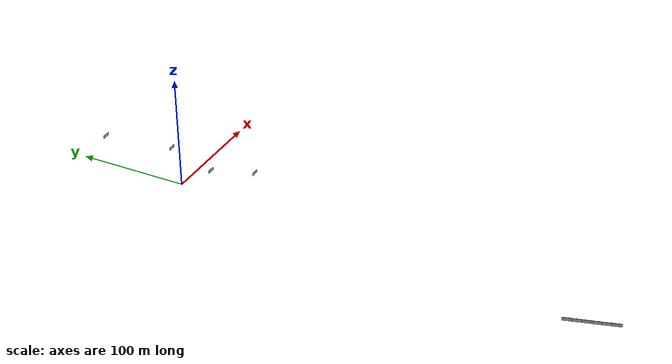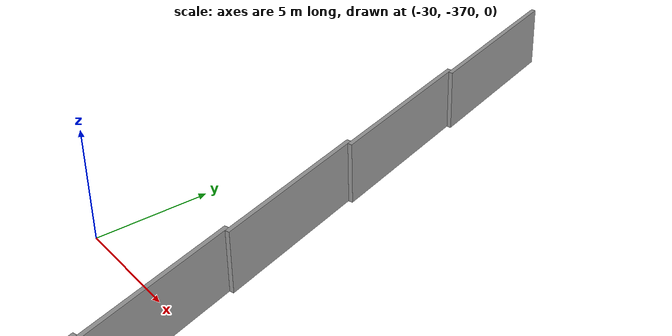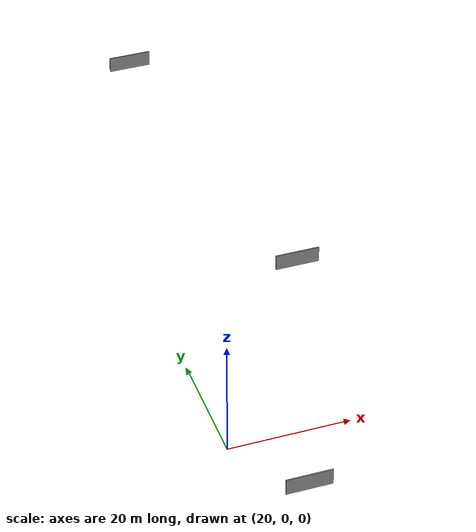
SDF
<sdf version="1.6">
 <world name="default">
  <light name="sun" type="directional">
   <pose>0 0 10 0 -0 0</pose>
   <diffuse>0.8 0.8 0.8 1</diffuse>
   <specular>0.2 0.2 0.2 1</specular>
   <attenuation>
    <range>1000</range>
    <constant>0.9</constant>
    <linear>0.01</linear>
    <quadratic>0.001</quadratic>
   </attenuation>
   <direction>-0.5 0.1 -0.9</direction>
  </light>
  <gravity>0 0 -9.8</gravity>
  <magnetic_field>6e-06 2.3e-05 -4.2e-05</magnetic_field>
  <atmosphere type="adiabatic"/>
  <physics name="default_physics" default="0" type="ode">
   <max_step_size>0.001</max_step_size>
   <real_time_factor>1</real_time_factor>
   <real_time_update_rate>1000</real_time_update_rate>
  </physics>
  <scene><ambient>0.4 0.4 0.4 1</ambient><background>0.7 0.7 0.7 1</background><shadows>1</shadows></scene>
  <audio><device>default</device></audio>
  <spherical_coordinates>
   <surface_model>EARTH_WGS84</surface_model>
   <latitude_deg>0</latitude_deg>
   <longitude_deg>0</longitude_deg>
   <elevation>0</elevation>
   <heading_deg>0</heading_deg>
  </spherical_coordinates>
  <model name="grey_wall">
   <static>1</static>
   <link name="link">
    <pose>0 0 1.4 0 -0 0</pose>
    <collision name="collision"><geometry><box><size>7.5 0.2 2.8</size></box></geometry></collision>
    <visual name="visual">
     <cast_shadows>0</cast_shadows>
     <geometry><box><size>7.5 0.2 2.8</size></box></geometry>
     <material>
      <script>
       <uri>model://grey_wall/materials/scripts</uri>
       <uri>model://grey_wall/materials/textures</uri>
       <name>vrc/grey_wall</name>
      </script>
     </material>
    </visual>
   </link>
   <pose>-29 -350 0 0 -0 1.87601</pose>
  </model>
  <model name="grey_wall_clone">
   <static>1</static>
   <link name="link">
    <pose>0 0 1.4 0 -0 0</pose>
    <collision name="collision"><geometry><box><size>7.5 0.2 2.8</size></box></geometry></collision>
    <visual name="visual">
     <cast_shadows>0</cast_shadows>
     <geometry><box><size>7.5 0.2 2.8</size></box></geometry>
     <material>
      <script>
       <uri>model://grey_wall/materials/scripts</uri>
       <uri>model://grey_wall/materials/textures</uri>
       <name>vrc/grey_wall</name>
      </script>
     </material>
    </visual>
   </link>
   <pose>-27 -357 0 0 -0 1.87601</pose>
  </model>
  <model name="grey_wall_clone_0">
   <static>1</static>
   <link name="link">
    <pose>0 0 1.4 0 -0 0</pose>
    <collision name="collision"><geometry><box><size>7.5 0.2 2.8</size></box></geometry></collision>
    <visual name="visual">
     <cast_shadows>0</cast_shadows>
     <geometry><box><size>7.5 0.2 2.8</size></box></geometry>
     <material>
      <script>
       <uri>model://grey_wall/materials/scripts</uri>
       <uri>model://grey_wall/materials/textures</uri>
       <name>vrc/grey_wall</name>
      </script>
     </material>
    </visual>
   </link>
   <pose>-25 -364 0 0 -0 1.87601</pose>
  </model>
  <model name="grey_wall_clone_0_clone">
   <static>1</static>
   <link name="link">
    <pose>0 0 1.4 0 -0 0</pose>
    <collision name="collision"><geometry><box><size>7.5 0.2 2.8</size></box></geometry></collision>
    <visual name="visual">
     <cast_shadows>0</cast_shadows>
     <geometry><box><size>7.5 0.2 2.8</size></box></geometry>
     <material>
      <script>
       <uri>model://grey_wall/materials/scripts</uri>
       <uri>model://grey_wall/materials/textures</uri>
       <name>vrc/grey_wall</name>
      </script>
     </material>
    </visual>
   </link>
   <pose>-23 -371 0 0 -0 1.87601</pose>
  </model>
  <model name="grey_wall_clone_0_clone_clone">
   <static>1</static>
   <link name="link">
    <pose>0 0 1.4 0 -0 0</pose>
    <collision name="collision"><geometry><box><size>7.5 0.2 2.8</size></box></geometry></collision>
    <visual name="visual">
     <cast_shadows>0</cast_shadows>
     <geometry><box><size>7.5 0.2 2.8</size></box></geometry>
     <material>
      <script>
       <uri>model://grey_wall/materials/scripts</uri>
       <uri>model://grey_wall/materials/textures</uri>
       <name>vrc/grey_wall</name>
      </script>
     </material>
    </visual>
   </link>
   <pose>-21 -378 0 0 -0 1.87601</pose>
  </model>
  <model name="grey_wall_clone_0_clone_clone_clone">
   <static>1</static>
   <link name="link">
    <pose>0 0 1.4 0 -0 0</pose>
    <collision name="collision"><geometry><box><size>7.5 0.2 2.8</size></box></geometry></collision>
    <visual name="visual">
     <cast_shadows>0</cast_shadows>
     <geometry><box><size>7.5 0.2 2.8</size></box></geometry>
     <material>
      <script>
       <uri>model://grey_wall/materials/scripts</uri>
       <uri>model://grey_wall/materials/textures</uri>
       <name>vrc/grey_wall</name>
      </script>
     </material>
    </visual>
   </link>
   <pose>-19 -385 0 0 -0 1.87601</pose>
  </model>
  <model name="grey_wall_0">
   <static>1</static>
   <link name="link">
    <pose>0 0 1.4 0 -0 0</pose>
    <collision name="collision"><geometry><box><size>7.5 0.2 2.8</size></box></geometry></collision>
    <visual name="visual">
     <cast_shadows>0</cast_shadows>
     <geometry><box><size>7.5 0.2 2.8</size></box></geometry>
     <material>
      <script>
       <uri>model://grey_wall/materials/scripts</uri>
       <uri>model://grey_wall/materials/textures</uri>
       <name>vrc/grey_wall</name>
      </script>
     </material>
    </visual>
   </link>
   <pose>42.0761 -48.2179 0 0 -0 0</pose>
  </model>
  <model name="grey_wall_1">
   <static>1</static>
   <link name="link">
    <pose>0 0 1.4 0 -0 0</pose>
    <collision name="collision"><geometry><box><size>7.5 0.2 2.8</size></box></geometry></collision>
    <visual name="visual">
     <cast_shadows>0</cast_shadows>
     <geometry><box><size>7.5 0.2 2.8</size></box></geometry>
     <material>
      <script>
       <uri>model://grey_wall/materials/scripts</uri>
       <uri>model://grey_wall/materials/textures</uri>
       <name>vrc/grey_wall</name>
      </script>
     </material>
    </visual>
   </link>
   <pose>36.5044 103.732 0 0 -0 0</pose>
  </model>
  <model name="grey_wall_3">
   <static>1</static>
   <link name="link">
    <pose>0 0 1.4 0 -0 0</pose>
    <collision name="collision"><geometry><box><size>7.5 0.2 2.8</size></box></geometry></collision>
    <visual name="visual">
     <cast_shadows>0</cast_shadows>
     <geometry><box><size>7.5 0.2 2.8</size></box></geometry>
     <material>
      <script>
       <uri>model://grey_wall/materials/scripts</uri>
       <uri>model://grey_wall/materials/textures</uri>
       <name>vrc/grey_wall</name>
      </script>
     </material>
    </visual>
   </link>
   <pose>28.7736 -12.135 0 0 -0 0</pose>
  </model>
  <model name="grey_wall_2">
   <static>1</static>
   <link name="link">
    <pose>0 0 1.4 0 -0 0</pose>
    <collision name="collision"><geometry><box><size>7.5 0.2 2.8</size></box></geometry></collision>
    <visual name="visual">
     <cast_shadows>0</cast_shadows>
     <geometry><box><size>7.5 0.2 2.8</size></box></geometry>
     <material>
      <script>
       <uri>model://grey_wall/materials/scripts</uri>
       <uri>model://grey_wall/materials/textures</uri>
       <name>vrc/grey_wall</name>
      </script>
     </material>
    </visual>
   </link>
   <pose>45.5217 38.8065 0 0 -0 0</pose>
  </model>
 </world>
</sdf>
